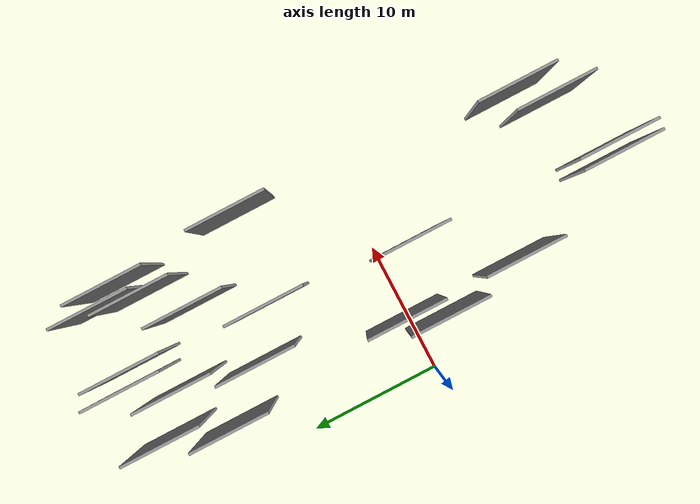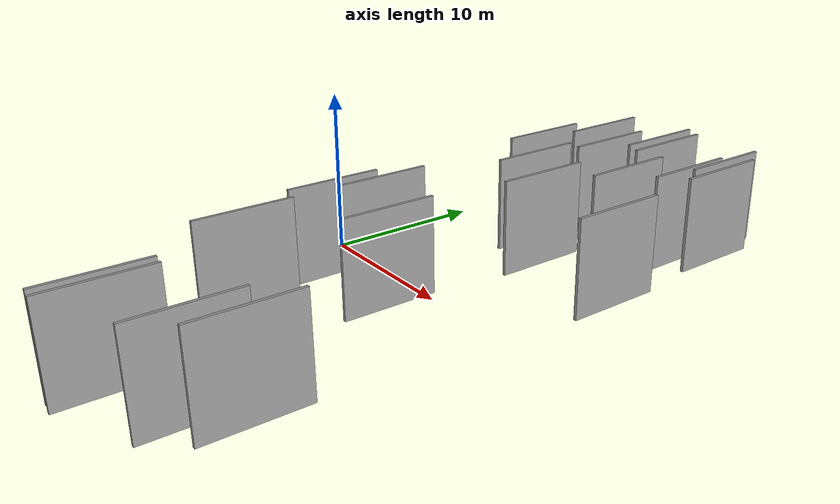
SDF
<sdf version="1.6">
 <world name="default">
  <scene>
   <sky><clouds><speed>12</speed></clouds></sky>
   <ambient>0.4 0.4 0.4 1</ambient>
   <background>0.7 0.7 0.7 1</background>
   <shadows>1</shadows>
  </scene>
  <gravity>0 0 -9.8066</gravity>
  <magnetic_field>6e-06 2.3e-05 -4.2e-05</magnetic_field>
  <physics default="0" name="default_physics" type="ode">
   <ode>
    <solver>
     <type>quick</type>
     <iters>10</iters>
     <sor>1.0</sor>
     <use_dynamic_moi_rescaling>0</use_dynamic_moi_rescaling>
    </solver>
    <constraints>
     <cfm>0</cfm>
     <erp>0.2</erp>
     <contact_max_correcting_vel>100</contact_max_correcting_vel>
     <contact_surface_layer>0.001</contact_surface_layer>
    </constraints>
   </ode>
   <max_step_size>0.004</max_step_size>
   <real_time_factor>1</real_time_factor>
   <real_time_update_rate>250</real_time_update_rate>
  </physics>
  <light name="sun" type="directional">
   <pose>0 0 10 0 0 0</pose>
   <diffuse>0.8 0.8 0.8 1</diffuse>
   <specular>0.2 0.2 0.2 1</specular>
   <attenuation>
    <range>1000</range>
    <constant>0.9</constant>
    <linear>0.01</linear>
    <quadratic>0.001</quadratic>
   </attenuation>
   <direction>-0.5 0.1 -0.9</direction>
  </light>
  <model name="grey_wall_1">
   <static>1</static>
   <pose>4.6826 -8.6515 0.0 0.000000 0.000000 1.570796</pose>
   <link name="link">
    <pose>0 0 3.00 0 0 0</pose>
    <collision name="collision"><geometry><box><size>6.00 0.2 6.00</size></box></geometry></collision>
    <visual name="visual">
     <cast_shadows>0</cast_shadows>
     <geometry><box><size>6.00 0.2 6.00</size></box></geometry>
     <material>
      <script>
       <uri>model://grey_wall/materials/scripts</uri>
       <uri>model://grey_wall/materials/textures</uri>
       <name>vrc/grey_wall</name>
      </script>
     </material>
    </visual>
   </link>
  </model>
  <model name="grey_wall_2">
   <static>1</static>
   <pose>14.7353 16.0541 0.0 0.000000 0.000000 1.570796</pose>
   <link name="link">
    <pose>0 0 3.00 0 0 0</pose>
    <collision name="collision"><geometry><box><size>6.00 0.2 6.00</size></box></geometry></collision>
    <visual name="visual">
     <cast_shadows>0</cast_shadows>
     <geometry><box><size>6.00 0.2 6.00</size></box></geometry>
     <material>
      <script>
       <uri>model://grey_wall/materials/scripts</uri>
       <uri>model://grey_wall/materials/textures</uri>
       <name>vrc/grey_wall</name>
      </script>
     </material>
    </visual>
   </link>
  </model>
  <model name="grey_wall_3">
   <static>1</static>
   <pose>9.2993 19.5415 0.0 0.000000 0.000000 1.570796</pose>
   <link name="link">
    <pose>0 0 3.00 0 0 0</pose>
    <collision name="collision"><geometry><box><size>6.00 0.2 6.00</size></box></geometry></collision>
    <visual name="visual">
     <cast_shadows>0</cast_shadows>
     <geometry><box><size>6.00 0.2 6.00</size></box></geometry>
     <material>
      <script>
       <uri>model://grey_wall/materials/scripts</uri>
       <uri>model://grey_wall/materials/textures</uri>
       <name>vrc/grey_wall</name>
      </script>
     </material>
    </visual>
   </link>
  </model>
  <model name="grey_wall_4">
   <static>1</static>
   <pose>3.4730 14.3780 0.0 0.000000 0.000000 1.570796</pose>
   <link name="link">
    <pose>0 0 3.00 0 0 0</pose>
    <collision name="collision"><geometry><box><size>6.00 0.2 6.00</size></box></geometry></collision>
    <visual name="visual">
     <cast_shadows>0</cast_shadows>
     <geometry><box><size>6.00 0.2 6.00</size></box></geometry>
     <material>
      <script>
       <uri>model://grey_wall/materials/scripts</uri>
       <uri>model://grey_wall/materials/textures</uri>
       <name>vrc/grey_wall</name>
      </script>
     </material>
    </visual>
   </link>
  </model>
  <model name="grey_wall_5">
   <static>1</static>
   <pose>10.3998 19.0183 0.0 0.000000 0.000000 1.570796</pose>
   <link name="link">
    <pose>0 0 3.00 0 0 0</pose>
    <collision name="collision"><geometry><box><size>6.00 0.2 6.00</size></box></geometry></collision>
    <visual name="visual">
     <cast_shadows>0</cast_shadows>
     <geometry><box><size>6.00 0.2 6.00</size></box></geometry>
     <material>
      <script>
       <uri>model://grey_wall/materials/scripts</uri>
       <uri>model://grey_wall/materials/textures</uri>
       <name>vrc/grey_wall</name>
      </script>
     </material>
    </visual>
   </link>
  </model>
  <model name="grey_wall_6">
   <static>1</static>
   <pose>15.2811 -13.5466 0.0 0.000000 0.000000 1.570796</pose>
   <link name="link">
    <pose>0 0 3.00 0 0 0</pose>
    <collision name="collision"><geometry><box><size>6.00 0.2 6.00</size></box></geometry></collision>
    <visual name="visual">
     <cast_shadows>0</cast_shadows>
     <geometry><box><size>6.00 0.2 6.00</size></box></geometry>
     <material>
      <script>
       <uri>model://grey_wall/materials/scripts</uri>
       <uri>model://grey_wall/materials/textures</uri>
       <name>vrc/grey_wall</name>
      </script>
     </material>
    </visual>
   </link>
  </model>
  <model name="grey_wall_7">
   <static>1</static>
   <pose>7.9473 -17.6797 0.0 0.000000 0.000000 1.570796</pose>
   <link name="link">
    <pose>0 0 3.00 0 0 0</pose>
    <collision name="collision"><geometry><box><size>6.00 0.2 6.00</size></box></geometry></collision>
    <visual name="visual">
     <cast_shadows>0</cast_shadows>
     <geometry><box><size>6.00 0.2 6.00</size></box></geometry>
     <material>
      <script>
       <uri>model://grey_wall/materials/scripts</uri>
       <uri>model://grey_wall/materials/textures</uri>
       <name>vrc/grey_wall</name>
      </script>
     </material>
    </visual>
   </link>
  </model>
  <model name="grey_wall_8">
   <static>1</static>
   <pose>9.2176 -2.3563 0.0 0.000000 0.000000 1.570796</pose>
   <link name="link">
    <pose>0 0 3.00 0 0 0</pose>
    <collision name="collision"><geometry><box><size>6.00 0.2 6.00</size></box></geometry></collision>
    <visual name="visual">
     <cast_shadows>0</cast_shadows>
     <geometry><box><size>6.00 0.2 6.00</size></box></geometry>
     <material>
      <script>
       <uri>model://grey_wall/materials/scripts</uri>
       <uri>model://grey_wall/materials/textures</uri>
       <name>vrc/grey_wall</name>
      </script>
     </material>
    </visual>
   </link>
  </model>
  <model name="grey_wall_9">
   <static>1</static>
   <pose>7.5738 16.5759 0.0 0.000000 0.000000 1.570796</pose>
   <link name="link">
    <pose>0 0 3.00 0 0 0</pose>
    <collision name="collision"><geometry><box><size>6.00 0.2 6.00</size></box></geometry></collision>
    <visual name="visual">
     <cast_shadows>0</cast_shadows>
     <geometry><box><size>6.00 0.2 6.00</size></box></geometry>
     <material>
      <script>
       <uri>model://grey_wall/materials/scripts</uri>
       <uri>model://grey_wall/materials/textures</uri>
       <name>vrc/grey_wall</name>
      </script>
     </material>
    </visual>
   </link>
  </model>
  <model name="grey_wall_10">
   <static>1</static>
   <pose>9.9238 8.4095 0.0 0.000000 0.000000 1.570796</pose>
   <link name="link">
    <pose>0 0 3.00 0 0 0</pose>
    <collision name="collision"><geometry><box><size>6.00 0.2 6.00</size></box></geometry></collision>
    <visual name="visual">
     <cast_shadows>0</cast_shadows>
     <geometry><box><size>6.00 0.2 6.00</size></box></geometry>
     <material>
      <script>
       <uri>model://grey_wall/materials/scripts</uri>
       <uri>model://grey_wall/materials/textures</uri>
       <name>vrc/grey_wall</name>
      </script>
     </material>
    </visual>
   </link>
  </model>
  <model name="grey_wall_11">
   <static>1</static>
   <pose>12.3050 13.2713 0.0 0.000000 0.000000 1.570796</pose>
   <link name="link">
    <pose>0 0 3.00 0 0 0</pose>
    <collision name="collision"><geometry><box><size>6.00 0.2 6.00</size></box></geometry></collision>
    <visual name="visual">
     <cast_shadows>0</cast_shadows>
     <geometry><box><size>6.00 0.2 6.00</size></box></geometry>
     <material>
      <script>
       <uri>model://grey_wall/materials/scripts</uri>
       <uri>model://grey_wall/materials/textures</uri>
       <name>vrc/grey_wall</name>
      </script>
     </material>
    </visual>
   </link>
  </model>
  <model name="grey_wall_12">
   <static>1</static>
   <pose>6.6125 10.7697 0.0 0.000000 0.000000 1.570796</pose>
   <link name="link">
    <pose>0 0 3.00 0 0 0</pose>
    <collision name="collision"><geometry><box><size>6.00 0.2 6.00</size></box></geometry></collision>
    <visual name="visual">
     <cast_shadows>0</cast_shadows>
     <geometry><box><size>6.00 0.2 6.00</size></box></geometry>
     <material>
      <script>
       <uri>model://grey_wall/materials/scripts</uri>
       <uri>model://grey_wall/materials/textures</uri>
       <name>vrc/grey_wall</name>
      </script>
     </material>
    </visual>
   </link>
  </model>
  <model name="grey_wall_13">
   <static>1</static>
   <pose>8.7479 -17.7737 0.0 0.000000 0.000000 1.570796</pose>
   <link name="link">
    <pose>0 0 3.00 0 0 0</pose>
    <collision name="collision"><geometry><box><size>6.00 0.2 6.00</size></box></geometry></collision>
    <visual name="visual">
     <cast_shadows>0</cast_shadows>
     <geometry><box><size>6.00 0.2 6.00</size></box></geometry>
     <material>
      <script>
       <uri>model://grey_wall/materials/scripts</uri>
       <uri>model://grey_wall/materials/textures</uri>
       <name>vrc/grey_wall</name>
      </script>
     </material>
    </visual>
   </link>
  </model>
  <model name="grey_wall_14">
   <static>1</static>
   <pose>15.1891 18.8920 0.0 0.000000 0.000000 1.570796</pose>
   <link name="link">
    <pose>0 0 3.00 0 0 0</pose>
    <collision name="collision"><geometry><box><size>6.00 0.2 6.00</size></box></geometry></collision>
    <visual name="visual">
     <cast_shadows>0</cast_shadows>
     <geometry><box><size>6.00 0.2 6.00</size></box></geometry>
     <material>
      <script>
       <uri>model://grey_wall/materials/scripts</uri>
       <uri>model://grey_wall/materials/textures</uri>
       <name>vrc/grey_wall</name>
      </script>
     </material>
    </visual>
   </link>
  </model>
  <model name="grey_wall_15">
   <static>1</static>
   <pose>4.6377 0.3325 0.0 0.000000 0.000000 1.570796</pose>
   <link name="link">
    <pose>0 0 3.00 0 0 0</pose>
    <collision name="collision"><geometry><box><size>6.00 0.2 6.00</size></box></geometry></collision>
    <visual name="visual">
     <cast_shadows>0</cast_shadows>
     <geometry><box><size>6.00 0.2 6.00</size></box></geometry>
     <material>
      <script>
       <uri>model://grey_wall/materials/scripts</uri>
       <uri>model://grey_wall/materials/textures</uri>
       <name>vrc/grey_wall</name>
      </script>
     </material>
    </visual>
   </link>
  </model>
  <model name="grey_wall_16">
   <static>1</static>
   <pose>13.5779 -15.6005 0.0 0.000000 0.000000 1.570796</pose>
   <link name="link">
    <pose>0 0 3.00 0 0 0</pose>
    <collision name="collision"><geometry><box><size>6.00 0.2 6.00</size></box></geometry></collision>
    <visual name="visual">
     <cast_shadows>0</cast_shadows>
     <geometry><box><size>6.00 0.2 6.00</size></box></geometry>
     <material>
      <script>
       <uri>model://grey_wall/materials/scripts</uri>
       <uri>model://grey_wall/materials/textures</uri>
       <name>vrc/grey_wall</name>
      </script>
     </material>
    </visual>
   </link>
  </model>
  <model name="grey_wall_17">
   <static>1</static>
   <pose>3.4741 -2.3561 0.0 0.000000 0.000000 1.570796</pose>
   <link name="link">
    <pose>0 0 3.00 0 0 0</pose>
    <collision name="collision"><geometry><box><size>6.00 0.2 6.00</size></box></geometry></collision>
    <visual name="visual">
     <cast_shadows>0</cast_shadows>
     <geometry><box><size>6.00 0.2 6.00</size></box></geometry>
     <material>
      <script>
       <uri>model://grey_wall/materials/scripts</uri>
       <uri>model://grey_wall/materials/textures</uri>
       <name>vrc/grey_wall</name>
      </script>
     </material>
    </visual>
   </link>
  </model>
  <model name="grey_wall_18">
   <static>1</static>
   <pose>4.8170 18.8641 0.0 0.000000 0.000000 1.570796</pose>
   <link name="link">
    <pose>0 0 3.00 0 0 0</pose>
    <collision name="collision"><geometry><box><size>6.00 0.2 6.00</size></box></geometry></collision>
    <visual name="visual">
     <cast_shadows>0</cast_shadows>
     <geometry><box><size>6.00 0.2 6.00</size></box></geometry>
     <material>
      <script>
       <uri>model://grey_wall/materials/scripts</uri>
       <uri>model://grey_wall/materials/textures</uri>
       <name>vrc/grey_wall</name>
      </script>
     </material>
    </visual>
   </link>
  </model>
  <model name="grey_wall_19">
   <static>1</static>
   <pose>16.1621 17.3248 0.0 0.000000 0.000000 1.570796</pose>
   <link name="link">
    <pose>0 0 3.00 0 0 0</pose>
    <collision name="collision"><geometry><box><size>6.00 0.2 6.00</size></box></geometry></collision>
    <visual name="visual">
     <cast_shadows>0</cast_shadows>
     <geometry><box><size>6.00 0.2 6.00</size></box></geometry>
     <material>
      <script>
       <uri>model://grey_wall/materials/scripts</uri>
       <uri>model://grey_wall/materials/textures</uri>
       <name>vrc/grey_wall</name>
      </script>
     </material>
    </visual>
   </link>
  </model>
  <model name="grey_wall_20">
   <static>1</static>
   <pose>16.7726 7.7214 0.0 0.000000 0.000000 1.570796</pose>
   <link name="link">
    <pose>0 0 3.00 0 0 0</pose>
    <collision name="collision"><geometry><box><size>6.00 0.2 6.00</size></box></geometry></collision>
    <visual name="visual">
     <cast_shadows>0</cast_shadows>
     <geometry><box><size>6.00 0.2 6.00</size></box></geometry>
     <material>
      <script>
       <uri>model://grey_wall/materials/scripts</uri>
       <uri>model://grey_wall/materials/textures</uri>
       <name>vrc/grey_wall</name>
      </script>
     </material>
    </visual>
   </link>
  </model>
 </world>
</sdf>
